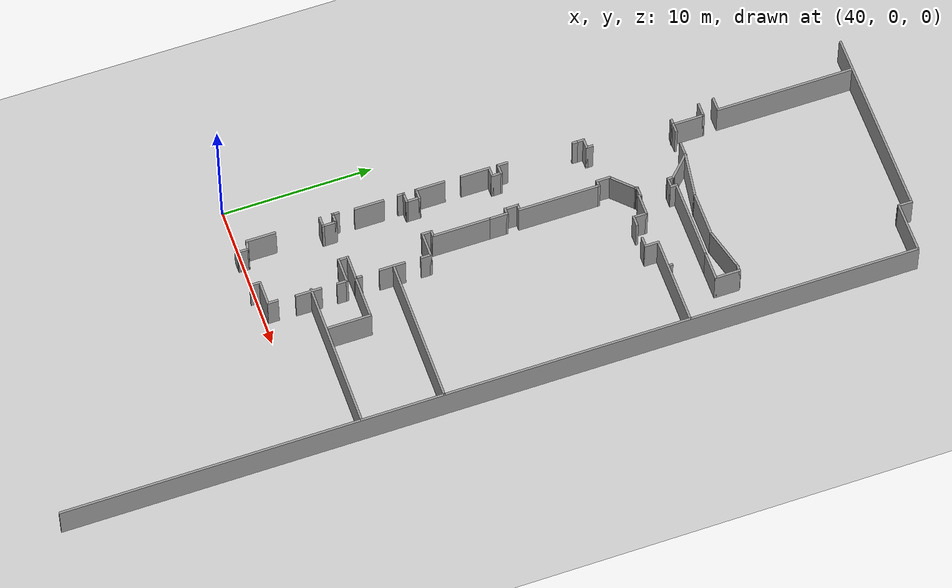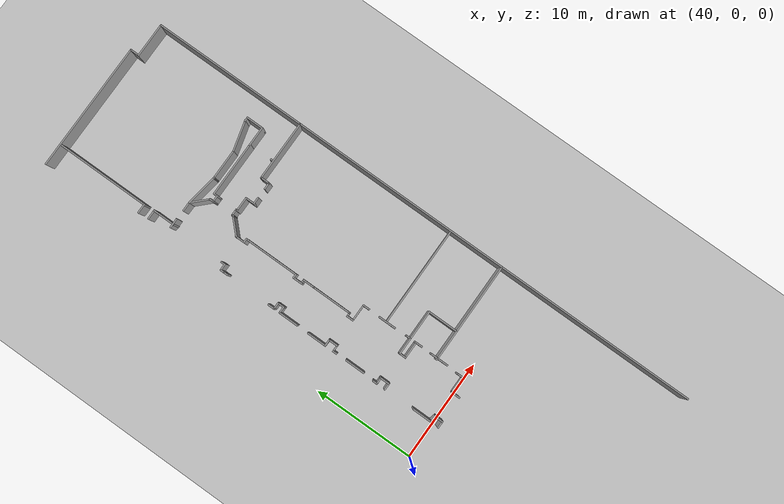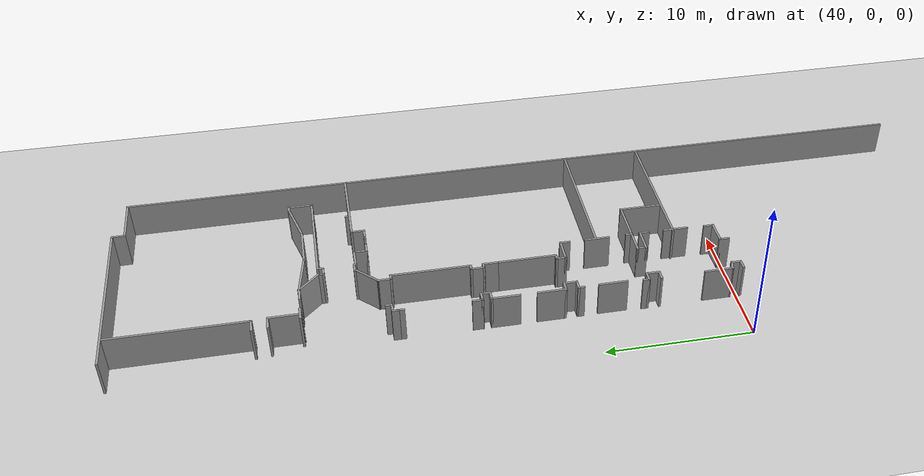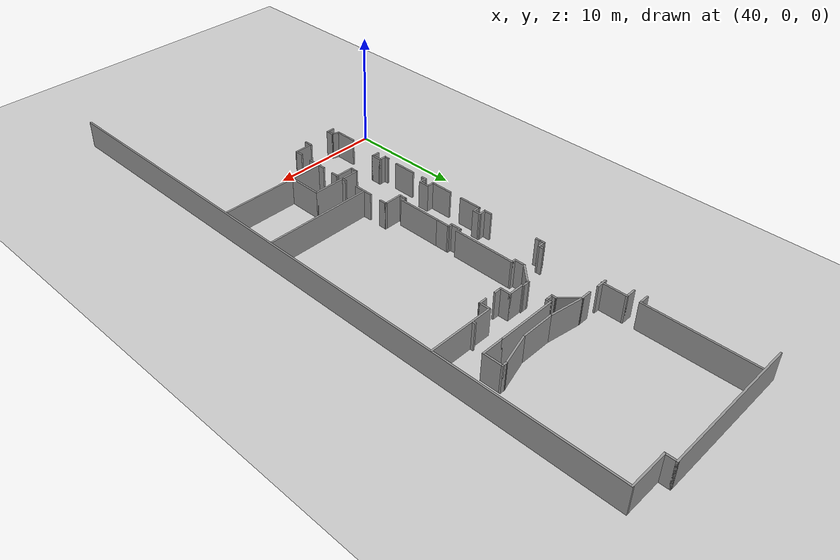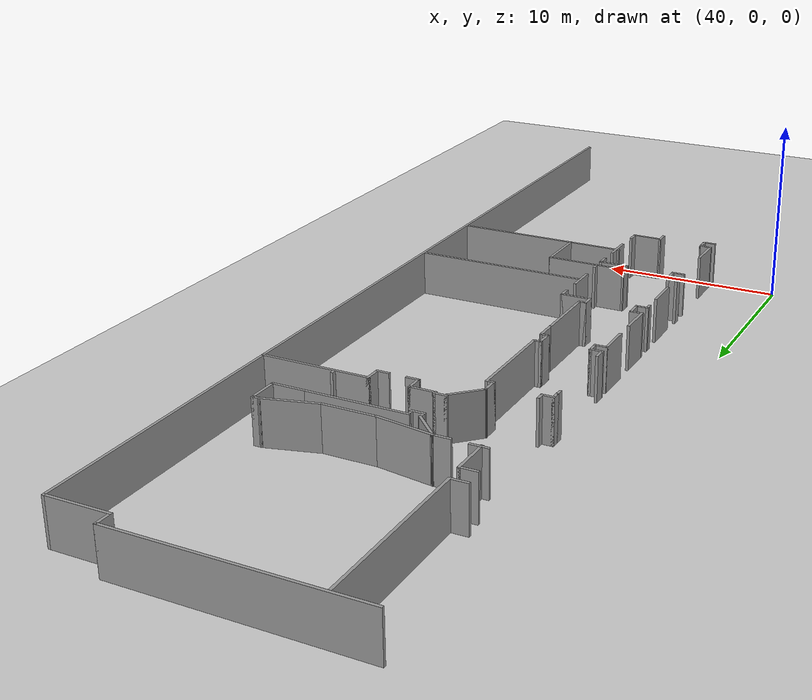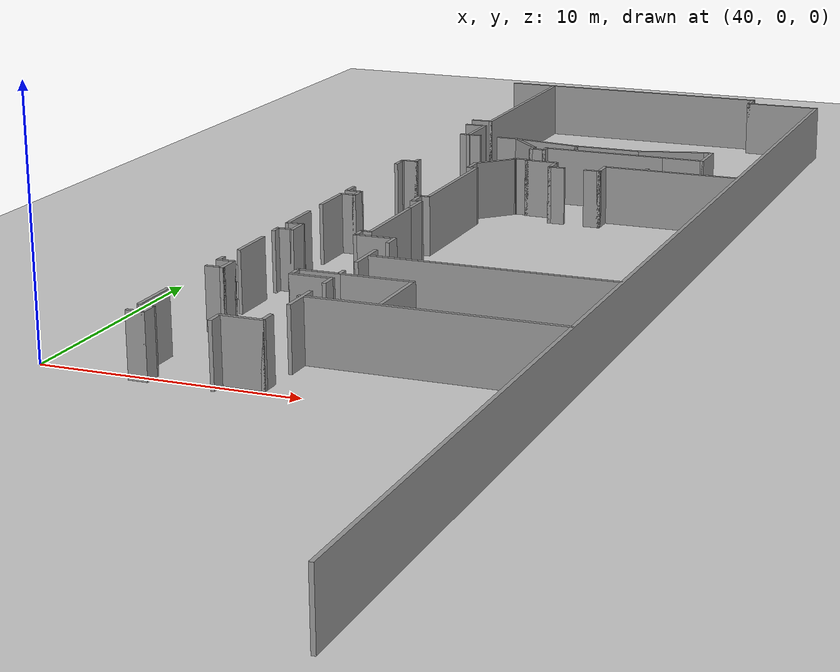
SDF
<sdf version="1.6">
 <world name="default">
  <model name="ground_plane">
   <static>1</static>
   <link name="link">
    <collision name="collision">
     <geometry><plane><normal>0 0 1</normal><size>200 100</size></plane></geometry>
     <surface><friction><ode><mu>100</mu><mu2>50</mu2></ode></friction></surface>
    </collision>
    <visual name="visual">
     <cast_shadows>0</cast_shadows>
     <geometry><plane><normal>0 0 1</normal><size>200 100</size></plane></geometry>
     <material>
      <script><uri>file://media/materials/scripts/gazebo.material</uri><name>Gazebo/Grey</name></script>
     </material>
    </visual>
   </link>
  </model>
  <model name="LuterFloorPlan">
   <pose>-8.27259 7.62647 0 0 -0 0</pose>
   <link name="Wall_1028">
    <collision name="Wall_1028_Collision">
     <geometry><box><size>12.75 0.15 2.5</size></box></geometry>
     <pose>0 0 1.25 0 -0 0</pose>
    </collision>
    <visual name="Wall_1028_Visual">
     <pose>0 0 1.25 0 -0 0</pose>
     <geometry><box><size>12.75 0.15 2.5</size></box></geometry>
     <material>
      <script><uri>file://media/materials/scripts/gazebo.material</uri><name>Gazebo/Grey</name></script>
      <ambient>1 1 1 1</ambient>
     </material>
    </visual>
    <pose>56.9708 33.5714 0 0 -0 0</pose>
   </link>
   <link name="Wall_1029">
    <collision name="Wall_1029_Collision">
     <geometry><box><size>1 0.15 2.5</size></box></geometry>
     <pose>0 0 1.25 0 -0 0</pose>
    </collision>
    <visual name="Wall_1029_Visual">
     <pose>0 0 1.25 0 -0 0</pose>
     <geometry><box><size>1 0.15 2.5</size></box></geometry>
     <material>
      <script><uri>file://media/materials/scripts/gazebo.material</uri><name>Gazebo/Grey</name></script>
      <ambient>1 1 1 1</ambient>
     </material>
    </visual>
    <pose>63.2708 33.1464 0 0 0 -1.5708</pose>
   </link>
   <link name="Wall_1030">
    <collision name="Wall_1030_Collision">
     <geometry><box><size>3.5 0.15 2.5</size></box></geometry>
     <pose>0 0 1.25 0 -0 0</pose>
    </collision>
    <visual name="Wall_1030_Visual">
     <pose>0 0 1.25 0 -0 0</pose>
     <geometry><box><size>3.5 0.15 2.5</size></box></geometry>
     <material>
      <script><uri>file://media/materials/scripts/gazebo.material</uri><name>Gazebo/Grey</name></script>
      <ambient>1 1 1 1</ambient>
     </material>
    </visual>
    <pose>64.9458 32.7214 0 0 -0 0</pose>
   </link>
   <link name="Wall_1033">
    <collision name="Wall_1033_Collision">
     <geometry><box><size>57 0.15 2.5</size></box></geometry>
     <pose>0 0 1.25 0 -0 0</pose>
    </collision>
    <visual name="Wall_1033_Visual">
     <pose>0 0 1.25 0 -0 0</pose>
     <geometry><box><size>57 0.15 2.5</size></box></geometry>
     <material>
      <script><uri>file://media/materials/scripts/gazebo.material</uri><name>Gazebo/Grey</name></script>
      <ambient>1 1 1 1</ambient>
     </material>
    </visual>
    <pose>66.6208 4.29644 0 0 0 -1.5708</pose>
   </link>
   <link name="Wall_1057">
    <collision name="Wall_1057_Collision">
     <geometry><box><size>0.75 0.15 2.5</size></box></geometry>
     <pose>0 0 1.25 0 -0 0</pose>
    </collision>
    <visual name="Wall_1057_Visual">
     <pose>0 0 1.25 0 -0 0</pose>
     <geometry><box><size>0.75 0.15 2.5</size></box></geometry>
     <material>
      <script><uri>file://media/materials/scripts/gazebo.material</uri><name>Gazebo/Grey</name></script>
      <ambient>1 1 1 1</ambient>
     </material>
    </visual>
    <pose>55.1695 -7.63593 0 0 -0 1.5708</pose>
   </link>
   <link name="Wall_1058">
    <collision name="Wall_1058_Collision">
     <geometry><box><size>1.75 0.15 2.5</size></box></geometry>
     <pose>0 0 1.25 0 -0 0</pose>
    </collision>
    <visual name="Wall_1058_Visual">
     <pose>0 0 1.25 0 -0 0</pose>
     <geometry><box><size>1.75 0.15 2.5</size></box></geometry>
     <material>
      <script><uri>file://media/materials/scripts/gazebo.material</uri><name>Gazebo/Grey</name></script>
      <ambient>1 1 1 1</ambient>
     </material>
    </visual>
    <pose>55.9695 -7.33593 0 0 -0 0</pose>
   </link>
   <link name="Wall_1059">
    <collision name="Wall_1059_Collision">
     <geometry><box><size>0.75 0.15 2.5</size></box></geometry>
     <pose>0 0 1.25 0 -0 0</pose>
    </collision>
    <visual name="Wall_1059_Visual">
     <pose>0 0 1.25 0 -0 0</pose>
     <geometry><box><size>0.75 0.15 2.5</size></box></geometry>
     <material>
      <script><uri>file://media/materials/scripts/gazebo.material</uri><name>Gazebo/Grey</name></script>
      <ambient>1 1 1 1</ambient>
     </material>
    </visual>
    <pose>56.7695 -7.03593 0 0 -0 1.5708</pose>
   </link>
   <link name="Wall_1062">
    <collision name="Wall_1062_Collision">
     <geometry><box><size>0.75 0.15 2.5</size></box></geometry>
     <pose>0 0 1.25 0 -0 0</pose>
    </collision>
    <visual name="Wall_1062_Visual">
     <pose>0 0 1.25 0 -0 0</pose>
     <geometry><box><size>0.75 0.15 2.5</size></box></geometry>
     <material>
      <script><uri>file://media/materials/scripts/gazebo.material</uri><name>Gazebo/Grey</name></script>
      <ambient>1 1 1 1</ambient>
     </material>
    </visual>
    <pose>52.3275 -7.92584 0 0 -0 0</pose>
   </link>
   <link name="Wall_1063">
    <collision name="Wall_1063_Collision">
     <geometry><box><size>0.75 0.15 2.5</size></box></geometry>
     <pose>0 0 1.25 0 -0 0</pose>
    </collision>
    <visual name="Wall_1063_Visual">
     <pose>0 0 1.25 0 -0 0</pose>
     <geometry><box><size>0.75 0.15 2.5</size></box></geometry>
     <material>
      <script><uri>file://media/materials/scripts/gazebo.material</uri><name>Gazebo/Grey</name></script>
      <ambient>1 1 1 1</ambient>
     </material>
    </visual>
    <pose>52.6275 -7.62584 0 0 -0 1.5708</pose>
   </link>
   <link name="Wall_1064">
    <collision name="Wall_1064_Collision">
     <geometry><box><size>0.75 0.15 2.5</size></box></geometry>
     <pose>0 0 1.25 0 -0 0</pose>
    </collision>
    <visual name="Wall_1064_Visual">
     <pose>0 0 1.25 0 -0 0</pose>
     <geometry><box><size>0.75 0.15 2.5</size></box></geometry>
     <material>
      <script><uri>file://media/materials/scripts/gazebo.material</uri><name>Gazebo/Grey</name></script>
      <ambient>1 1 1 1</ambient>
     </material>
    </visual>
    <pose>52.3377 -7.24819 0 0 -0 2.87979</pose>
   </link>
   <link name="Wall_1065">
    <collision name="Wall_1065_Collision">
     <geometry><box><size>2 0.15 2.5</size></box></geometry>
     <pose>0 0 1.25 0 -0 0</pose>
    </collision>
    <visual name="Wall_1065_Visual">
     <pose>0 0 1.25 0 -0 0</pose>
     <geometry><box><size>2 0.15 2.5</size></box></geometry>
     <material>
      <script><uri>file://media/materials/scripts/gazebo.material</uri><name>Gazebo/Grey</name></script>
      <ambient>1 1 1 1</ambient>
     </material>
    </visual>
    <pose>52.048 -6.24555 0 0 -0 1.5708</pose>
   </link>
   <link name="Wall_1069">
    <collision name="Wall_1069_Collision">
     <geometry><box><size>1.75 0.15 2.5</size></box></geometry>
     <pose>0 0 1.25 0 -0 0</pose>
    </collision>
    <visual name="Wall_1069_Visual">
     <pose>0 0 1.25 0 -0 0</pose>
     <geometry><box><size>1.75 0.15 2.5</size></box></geometry>
     <material>
      <script><uri>file://media/materials/scripts/gazebo.material</uri><name>Gazebo/Grey</name></script>
      <ambient>1 1 1 1</ambient>
     </material>
    </visual>
    <pose>56.8427 -4.66696 0 0 -0 1.5708</pose>
   </link>
   <link name="Wall_1071">
    <collision name="Wall_1071_Collision">
     <geometry><box><size>10 0.15 2.5</size></box></geometry>
     <pose>0 0 1.25 0 -0 0</pose>
    </collision>
    <visual name="Wall_1071_Visual">
     <pose>0 0 1.25 0 -0 0</pose>
     <geometry><box><size>10 0.15 2.5</size></box></geometry>
     <material>
      <script><uri>file://media/materials/scripts/gazebo.material</uri><name>Gazebo/Grey</name></script>
      <ambient>1 1 1 1</ambient>
     </material>
    </visual>
    <pose>61.6552 -4.45041 0 0 -0 3.14159</pose>
   </link>
   <link name="Wall_1074">
    <collision name="Wall_1074_Collision">
     <geometry><box><size>0.75 0.15 2.5</size></box></geometry>
     <pose>0 0 1.25 0 -0 0</pose>
    </collision>
    <visual name="Wall_1074_Visual">
     <pose>0 0 1.25 0 -0 0</pose>
     <geometry><box><size>0.75 0.15 2.5</size></box></geometry>
     <material>
      <script><uri>file://media/materials/scripts/gazebo.material</uri><name>Gazebo/Grey</name></script>
      <ambient>1 1 1 1</ambient>
     </material>
    </visual>
    <pose>56.8683 -2.42902 0 0 -0 1.5708</pose>
   </link>
   <link name="Wall_1075">
    <collision name="Wall_1075_Collision">
     <geometry><box><size>1.75 0.15 2.5</size></box></geometry>
     <pose>0 0 1.25 0 -0 0</pose>
    </collision>
    <visual name="Wall_1075_Visual">
     <pose>0 0 1.25 0 -0 0</pose>
     <geometry><box><size>1.75 0.15 2.5</size></box></geometry>
     <material>
      <script><uri>file://media/materials/scripts/gazebo.material</uri><name>Gazebo/Grey</name></script>
      <ambient>1 1 1 1</ambient>
     </material>
    </visual>
    <pose>56.0683 -2.12902 0 0 -0 3.14159</pose>
   </link>
   <link name="Wall_1076">
    <collision name="Wall_1076_Collision">
     <geometry><box><size>0.75 0.15 2.5</size></box></geometry>
     <pose>0 0 1.25 0 -0 0</pose>
    </collision>
    <visual name="Wall_1076_Visual">
     <pose>0 0 1.25 0 -0 0</pose>
     <geometry><box><size>0.75 0.15 2.5</size></box></geometry>
     <material>
      <script><uri>file://media/materials/scripts/gazebo.material</uri><name>Gazebo/Grey</name></script>
      <ambient>1 1 1 1</ambient>
     </material>
    </visual>
    <pose>55.2683 -1.82902 0 0 -0 1.5708</pose>
   </link>
   <link name="Wall_1077">
    <collision name="Wall_1077_Collision">
     <geometry><box><size>1.75 0.15 2.5</size></box></geometry>
     <pose>0 0 1.25 0 -0 0</pose>
    </collision>
    <visual name="Wall_1077_Visual">
     <pose>0 0 1.25 0 -0 0</pose>
     <geometry><box><size>1.75 0.15 2.5</size></box></geometry>
     <material>
      <script><uri>file://media/materials/scripts/gazebo.material</uri><name>Gazebo/Grey</name></script>
      <ambient>1 1 1 1</ambient>
     </material>
    </visual>
    <pose>56.0683 -1.52902 0 0 -0 0</pose>
   </link>
   <link name="Wall_1078">
    <collision name="Wall_1078_Collision">
     <geometry><box><size>0.5 0.15 2.5</size></box></geometry>
     <pose>0 0 1.25 0 -0 0</pose>
    </collision>
    <visual name="Wall_1078_Visual">
     <pose>0 0 1.25 0 -0 0</pose>
     <geometry><box><size>0.5 0.15 2.5</size></box></geometry>
     <material>
      <script><uri>file://media/materials/scripts/gazebo.material</uri><name>Gazebo/Grey</name></script>
      <ambient>1 1 1 1</ambient>
     </material>
    </visual>
    <pose>56.8683 -1.35402 0 0 -0 1.5708</pose>
   </link>
   <link name="Wall_1080">
    <collision name="Wall_1080_Collision">
     <geometry><box><size>3 0.15 2.5</size></box></geometry>
     <pose>0 0 1.25 0 -0 0</pose>
    </collision>
    <visual name="Wall_1080_Visual">
     <pose>0 0 1.25 0 -0 0</pose>
     <geometry><box><size>3 0.15 2.5</size></box></geometry>
     <material>
      <script><uri>file://media/materials/scripts/gazebo.material</uri><name>Gazebo/Grey</name></script>
      <ambient>1 1 1 1</ambient>
     </material>
    </visual>
    <pose>58.2933 -1.52902 0 0 -0 0</pose>
   </link>
   <link name="Wall_1081">
    <collision name="Wall_1081_Collision">
     <geometry><box><size>3 0.15 2.5</size></box></geometry>
     <pose>0 0 1.25 0 -0 0</pose>
    </collision>
    <visual name="Wall_1081_Visual">
     <pose>0 0 1.25 0 -0 0</pose>
     <geometry><box><size>3 0.15 2.5</size></box></geometry>
     <material>
      <script><uri>file://media/materials/scripts/gazebo.material</uri><name>Gazebo/Grey</name></script>
      <ambient>1 1 1 1</ambient>
     </material>
    </visual>
    <pose>59.7183 -2.95402 0 0 0 -1.5708</pose>
   </link>
   <link name="Wall_1084">
    <collision name="Wall_1084_Collision">
     <geometry><box><size>0.75 0.15 2.5</size></box></geometry>
     <pose>0 0 1.25 0 -0 0</pose>
    </collision>
    <visual name="Wall_1084_Visual">
     <pose>0 0 1.25 0 -0 0</pose>
     <geometry><box><size>0.75 0.15 2.5</size></box></geometry>
     <material>
      <script><uri>file://media/materials/scripts/gazebo.material</uri><name>Gazebo/Grey</name></script>
      <ambient>1 1 1 1</ambient>
     </material>
    </visual>
    <pose>52.2891 -2.27087 0 0 -0 0</pose>
   </link>
   <link name="Wall_1085">
    <collision name="Wall_1085_Collision">
     <geometry><box><size>1 0.15 2.5</size></box></geometry>
     <pose>0 0 1.25 0 -0 0</pose>
    </collision>
    <visual name="Wall_1085_Visual">
     <pose>0 0 1.25 0 -0 0</pose>
     <geometry><box><size>1 0.15 2.5</size></box></geometry>
     <material>
      <script><uri>file://media/materials/scripts/gazebo.material</uri><name>Gazebo/Grey</name></script>
      <ambient>1 1 1 1</ambient>
     </material>
    </visual>
    <pose>52.5891 -1.84587 0 0 -0 1.5708</pose>
   </link>
   <link name="Wall_1087">
    <collision name="Wall_1087_Collision">
     <geometry><box><size>0.75 0.15 2.5</size></box></geometry>
     <pose>0 0 1.25 0 -0 0</pose>
    </collision>
    <visual name="Wall_1087_Visual">
     <pose>0 0 1.25 0 -0 0</pose>
     <geometry><box><size>0.75 0.15 2.5</size></box></geometry>
     <material>
      <script><uri>file://media/materials/scripts/gazebo.material</uri><name>Gazebo/Grey</name></script>
      <ambient>1 1 1 1</ambient>
     </material>
    </visual>
    <pose>52.2891 -1.42087 0 0 -0 3.14159</pose>
   </link>
   <link name="Wall_1088">
    <collision name="Wall_1088_Collision">
     <geometry><box><size>0.5 0.15 2.5</size></box></geometry>
     <pose>0 0 1.25 0 -0 0</pose>
    </collision>
    <visual name="Wall_1088_Visual">
     <pose>0 0 1.25 0 -0 0</pose>
     <geometry><box><size>0.5 0.15 2.5</size></box></geometry>
     <material>
      <script><uri>file://media/materials/scripts/gazebo.material</uri><name>Gazebo/Grey</name></script>
      <ambient>1 1 1 1</ambient>
     </material>
    </visual>
    <pose>51.9891 -1.24587 0 0 -0 1.5708</pose>
   </link>
   <link name="Wall_1092">
    <collision name="Wall_1092_Collision">
     <geometry><box><size>1.75 0.15 2.5</size></box></geometry>
     <pose>0 0 1.25 0 -0 0</pose>
    </collision>
    <visual name="Wall_1092_Visual">
     <pose>0 0 1.25 0 -0 0</pose>
     <geometry><box><size>1.75 0.15 2.5</size></box></geometry>
     <material>
      <script><uri>file://media/materials/scripts/gazebo.material</uri><name>Gazebo/Grey</name></script>
      <ambient>1 1 1 1</ambient>
     </material>
    </visual>
    <pose>56.8224 0.915874 0 0 -0 1.5708</pose>
   </link>
   <link name="Wall_1094">
    <collision name="Wall_1094_Collision">
     <geometry><box><size>2 0.15 2.5</size></box></geometry>
     <pose>0 0 1.25 0 -0 0</pose>
    </collision>
    <visual name="Wall_1094_Visual">
     <pose>0 0 1.25 0 -0 0</pose>
     <geometry><box><size>2 0.15 2.5</size></box></geometry>
     <material>
      <script><uri>file://media/materials/scripts/gazebo.material</uri><name>Gazebo/Grey</name></script>
      <ambient>1 1 1 1</ambient>
     </material>
    </visual>
    <pose>52.0809 0.979693 0 0 -0 1.5708</pose>
   </link>
   <link name="Wall_1096">
    <collision name="Wall_1096_Collision">
     <geometry><box><size>0.5 0.15 2.5</size></box></geometry>
     <pose>0 0 1.25 0 -0 0</pose>
    </collision>
    <visual name="Wall_1096_Visual">
     <pose>0 0 1.25 0 -0 0</pose>
     <geometry><box><size>0.5 0.15 2.5</size></box></geometry>
     <material>
      <script><uri>file://media/materials/scripts/gazebo.material</uri><name>Gazebo/Grey</name></script>
      <ambient>1 1 1 1</ambient>
     </material>
    </visual>
    <pose>52.0503 3.13577 0 0 -0 1.5708</pose>
   </link>
   <link name="Wall_1097">
    <collision name="Wall_1097_Collision">
     <geometry><box><size>0.75 0.15 2.5</size></box></geometry>
     <pose>0 0 1.25 0 -0 0</pose>
    </collision>
    <visual name="Wall_1097_Visual">
     <pose>0 0 1.25 0 -0 0</pose>
     <geometry><box><size>0.75 0.15 2.5</size></box></geometry>
     <material>
      <script><uri>file://media/materials/scripts/gazebo.material</uri><name>Gazebo/Grey</name></script>
      <ambient>1 1 1 1</ambient>
     </material>
    </visual>
    <pose>52.3503 3.31076 0 0 -0 0</pose>
   </link>
   <link name="Wall_1098">
    <collision name="Wall_1098_Collision">
     <geometry><box><size>1 0.15 2.5</size></box></geometry>
     <pose>0 0 1.25 0 -0 0</pose>
    </collision>
    <visual name="Wall_1098_Visual">
     <pose>0 0 1.25 0 -0 0</pose>
     <geometry><box><size>1 0.15 2.5</size></box></geometry>
     <material>
      <script><uri>file://media/materials/scripts/gazebo.material</uri><name>Gazebo/Grey</name></script>
      <ambient>1 1 1 1</ambient>
     </material>
    </visual>
    <pose>52.6503 3.73576 0 0 -0 1.5708</pose>
   </link>
   <link name="Wall_1099">
    <collision name="Wall_1099_Collision">
     <geometry><box><size>0.75 0.15 2.5</size></box></geometry>
     <pose>0 0 1.25 0 -0 0</pose>
    </collision>
    <visual name="Wall_1099_Visual">
     <pose>0 0 1.25 0 -0 0</pose>
     <geometry><box><size>0.75 0.15 2.5</size></box></geometry>
     <material>
      <script><uri>file://media/materials/scripts/gazebo.material</uri><name>Gazebo/Grey</name></script>
      <ambient>1 1 1 1</ambient>
     </material>
    </visual>
    <pose>52.3503 4.16077 0 0 -0 3.14159</pose>
   </link>
   <link name="Wall_1100">
    <collision name="Wall_1100_Collision">
     <geometry><box><size>2 0.15 2.5</size></box></geometry>
     <pose>0 0 1.25 0 -0 0</pose>
    </collision>
    <visual name="Wall_1100_Visual">
     <pose>0 0 1.25 0 -0 0</pose>
     <geometry><box><size>2 0.15 2.5</size></box></geometry>
     <material>
      <script><uri>file://media/materials/scripts/gazebo.material</uri><name>Gazebo/Grey</name></script>
      <ambient>1 1 1 1</ambient>
     </material>
    </visual>
    <pose>52.0503 5.08577 0 0 -0 1.5708</pose>
   </link>
   <link name="Wall_1102">
    <collision name="Wall_1102_Collision">
     <geometry><box><size>0.75 0.15 2.5</size></box></geometry>
     <pose>0 0 1.25 0 -0 0</pose>
    </collision>
    <visual name="Wall_1102_Visual">
     <pose>0 0 1.25 0 -0 0</pose>
     <geometry><box><size>0.75 0.15 2.5</size></box></geometry>
     <material>
      <script><uri>file://media/materials/scripts/gazebo.material</uri><name>Gazebo/Grey</name></script>
      <ambient>1 1 1 1</ambient>
     </material>
    </visual>
    <pose>56.8377 3.18429 0 0 -0 1.5708</pose>
   </link>
   <link name="Wall_1103">
    <collision name="Wall_1103_Collision">
     <geometry><box><size>1.75 0.15 2.5</size></box></geometry>
     <pose>0 0 1.25 0 -0 0</pose>
    </collision>
    <visual name="Wall_1103_Visual">
     <pose>0 0 1.25 0 -0 0</pose>
     <geometry><box><size>1.75 0.15 2.5</size></box></geometry>
     <material>
      <script><uri>file://media/materials/scripts/gazebo.material</uri><name>Gazebo/Grey</name></script>
      <ambient>1 1 1 1</ambient>
     </material>
    </visual>
    <pose>56.0377 3.48429 0 0 -0 3.14159</pose>
   </link>
   <link name="Wall_1104">
    <collision name="Wall_1104_Collision">
     <geometry><box><size>0.75 0.15 2.5</size></box></geometry>
     <pose>0 0 1.25 0 -0 0</pose>
    </collision>
    <visual name="Wall_1104_Visual">
     <pose>0 0 1.25 0 -0 0</pose>
     <geometry><box><size>0.75 0.15 2.5</size></box></geometry>
     <material>
      <script><uri>file://media/materials/scripts/gazebo.material</uri><name>Gazebo/Grey</name></script>
      <ambient>1 1 1 1</ambient>
     </material>
    </visual>
    <pose>55.2377 3.78429 0 0 -0 1.5708</pose>
   </link>
   <link name="Wall_1105">
    <collision name="Wall_1105_Collision">
     <geometry><box><size>0.5 0.15 2.5</size></box></geometry>
     <pose>0 0 1.25 0 -0 0</pose>
    </collision>
    <visual name="Wall_1105_Visual">
     <pose>0 0 1.25 0 -0 0</pose>
     <geometry><box><size>0.5 0.15 2.5</size></box></geometry>
     <material>
      <script><uri>file://media/materials/scripts/gazebo.material</uri><name>Gazebo/Grey</name></script>
      <ambient>1 1 1 1</ambient>
     </material>
    </visual>
    <pose>55.4127 4.08429 0 0 -0 0</pose>
   </link>
   <link name="Wall_1106">
    <collision name="Wall_1106_Collision">
     <geometry><box><size>4 0.15 2.5</size></box></geometry>
     <pose>0 0 1.25 0 -0 0</pose>
    </collision>
    <visual name="Wall_1106_Visual">
     <pose>0 0 1.25 0 -0 0</pose>
     <geometry><box><size>4 0.15 2.5</size></box></geometry>
     <material>
      <script><uri>file://media/materials/scripts/gazebo.material</uri><name>Gazebo/Grey</name></script>
      <ambient>1 1 1 1</ambient>
     </material>
    </visual>
    <pose>55.5877 6.00929 0 0 -0 1.5708</pose>
   </link>
   <link name="Wall_1111">
    <collision name="Wall_1111_Collision">
     <geometry><box><size>9.75 0.15 2.5</size></box></geometry>
     <pose>0 0 1.25 0 -0 0</pose>
    </collision>
    <visual name="Wall_1111_Visual">
     <pose>0 0 1.25 0 -0 0</pose>
     <geometry><box><size>9.75 0.15 2.5</size></box></geometry>
     <material>
      <script><uri>file://media/materials/scripts/gazebo.material</uri><name>Gazebo/Grey</name></script>
      <ambient>1 1 1 1</ambient>
     </material>
    </visual>
    <pose>61.7496 1.00996 0 0 -0 0</pose>
   </link>
   <link name="Wall_1113">
    <collision name="Wall_1113_Collision">
     <geometry><box><size>1.25 0.15 2.5</size></box></geometry>
     <pose>0 0 1.25 0 -0 0</pose>
    </collision>
    <visual name="Wall_1113_Visual">
     <pose>0 0 1.25 0 -0 0</pose>
     <geometry><box><size>1.25 0.15 2.5</size></box></geometry>
     <material>
      <script><uri>file://media/materials/scripts/gazebo.material</uri><name>Gazebo/Grey</name></script>
      <ambient>1 1 1 1</ambient>
     </material>
    </visual>
    <pose>55.5877 8.48429 0 0 -0 1.5708</pose>
   </link>
   <link name="Wall_1114">
    <collision name="Wall_1114_Collision">
     <geometry><box><size>0.5 0.15 2.5</size></box></geometry>
     <pose>0 0 1.25 0 -0 0</pose>
    </collision>
    <visual name="Wall_1114_Visual">
     <pose>0 0 1.25 0 -0 0</pose>
     <geometry><box><size>0.5 0.15 2.5</size></box></geometry>
     <material>
      <script><uri>file://media/materials/scripts/gazebo.material</uri><name>Gazebo/Grey</name></script>
      <ambient>1 1 1 1</ambient>
     </material>
    </visual>
    <pose>55.4127 9.03429 0 0 -0 3.14159</pose>
   </link>
   <link name="Wall_1115">
    <collision name="Wall_1115_Collision">
     <geometry><box><size>1 0.15 2.5</size></box></geometry>
     <pose>0 0 1.25 0 -0 0</pose>
    </collision>
    <visual name="Wall_1115_Visual">
     <pose>0 0 1.25 0 -0 0</pose>
     <geometry><box><size>1 0.15 2.5</size></box></geometry>
     <material>
      <script><uri>file://media/materials/scripts/gazebo.material</uri><name>Gazebo/Grey</name></script>
      <ambient>1 1 1 1</ambient>
     </material>
    </visual>
    <pose>55.2377 9.45929 0 0 -0 1.5708</pose>
   </link>
   <link name="Wall_1116">
    <collision name="Wall_1116_Collision">
     <geometry><box><size>0.5 0.15 2.5</size></box></geometry>
     <pose>0 0 1.25 0 -0 0</pose>
    </collision>
    <visual name="Wall_1116_Visual">
     <pose>0 0 1.25 0 -0 0</pose>
     <geometry><box><size>0.5 0.15 2.5</size></box></geometry>
     <material>
      <script><uri>file://media/materials/scripts/gazebo.material</uri><name>Gazebo/Grey</name></script>
      <ambient>1 1 1 1</ambient>
     </material>
    </visual>
    <pose>55.4127 9.88429 0 0 -0 0</pose>
   </link>
   <link name="Wall_1117">
    <collision name="Wall_1117_Collision">
     <geometry><box><size>5.5 0.15 2.5</size></box></geometry>
     <pose>0 0 1.25 0 -0 0</pose>
    </collision>
    <visual name="Wall_1117_Visual">
     <pose>0 0 1.25 0 -0 0</pose>
     <geometry><box><size>5.5 0.15 2.5</size></box></geometry>
     <material>
      <script><uri>file://media/materials/scripts/gazebo.material</uri><name>Gazebo/Grey</name></script>
      <ambient>1 1 1 1</ambient>
     </material>
    </visual>
    <pose>55.5877 12.5593 0 0 -0 1.5708</pose>
   </link>
   <link name="Wall_1119">
    <collision name="Wall_1119_Collision">
     <geometry><box><size>2 0.15 2.5</size></box></geometry>
     <pose>0 0 1.25 0 -0 0</pose>
    </collision>
    <visual name="Wall_1119_Visual">
     <pose>0 0 1.25 0 -0 0</pose>
     <geometry><box><size>2 0.15 2.5</size></box></geometry>
     <material>
      <script><uri>file://media/materials/scripts/gazebo.material</uri><name>Gazebo/Grey</name></script>
      <ambient>1 1 1 1</ambient>
     </material>
    </visual>
    <pose>52.0523 8.14604 0 0 -0 1.5708</pose>
   </link>
   <link name="Wall_1120">
    <collision name="Wall_1120_Collision">
     <geometry><box><size>0.75 0.15 2.5</size></box></geometry>
     <pose>0 0 1.25 0 -0 0</pose>
    </collision>
    <visual name="Wall_1120_Visual">
     <pose>0 0 1.25 0 -0 0</pose>
     <geometry><box><size>0.75 0.15 2.5</size></box></geometry>
     <material>
      <script><uri>file://media/materials/scripts/gazebo.material</uri><name>Gazebo/Grey</name></script>
      <ambient>1 1 1 1</ambient>
     </material>
    </visual>
    <pose>52.3523 9.07104 0 0 -0 0</pose>
   </link>
   <link name="Wall_1121">
    <collision name="Wall_1121_Collision">
     <geometry><box><size>0.75 0.15 2.5</size></box></geometry>
     <pose>0 0 1.25 0 -0 0</pose>
    </collision>
    <visual name="Wall_1121_Visual">
     <pose>0 0 1.25 0 -0 0</pose>
     <geometry><box><size>0.75 0.15 2.5</size></box></geometry>
     <material>
      <script><uri>file://media/materials/scripts/gazebo.material</uri><name>Gazebo/Grey</name></script>
      <ambient>1 1 1 1</ambient>
     </material>
    </visual>
    <pose>52.6523 9.37104 0 0 -0 1.5708</pose>
   </link>
   <link name="Wall_1122">
    <collision name="Wall_1122_Collision">
     <geometry><box><size>0.75 0.15 2.5</size></box></geometry>
     <pose>0 0 1.25 0 -0 0</pose>
    </collision>
    <visual name="Wall_1122_Visual">
     <pose>0 0 1.25 0 -0 0</pose>
     <geometry><box><size>0.75 0.15 2.5</size></box></geometry>
     <material>
      <script><uri>file://media/materials/scripts/gazebo.material</uri><name>Gazebo/Grey</name></script>
      <ambient>1 1 1 1</ambient>
     </material>
    </visual>
    <pose>52.3523 9.67104 0 0 -0 3.14159</pose>
   </link>
   <link name="Wall_1123">
    <collision name="Wall_1123_Collision">
     <geometry><box><size>0.75 0.15 2.5</size></box></geometry>
     <pose>0 0 1.25 0 -0 0</pose>
    </collision>
    <visual name="Wall_1123_Visual">
     <pose>0 0 1.25 0 -0 0</pose>
     <geometry><box><size>0.75 0.15 2.5</size></box></geometry>
     <material>
      <script><uri>file://media/materials/scripts/gazebo.material</uri><name>Gazebo/Grey</name></script>
      <ambient>1 1 1 1</ambient>
     </material>
    </visual>
    <pose>52.0523 9.97104 0 0 -0 1.5708</pose>
   </link>
   <link name="Wall_1133">
    <collision name="Wall_1133_Collision">
     <geometry><box><size>0.5 0.15 2.5</size></box></geometry>
     <pose>0 0 1.25 0 -0 0</pose>
    </collision>
    <visual name="Wall_1133_Visual">
     <pose>0 0 1.25 0 -0 0</pose>
     <geometry><box><size>0.5 0.15 2.5</size></box></geometry>
     <material>
      <script><uri>file://media/materials/scripts/gazebo.material</uri><name>Gazebo/Grey</name></script>
      <ambient>1 1 1 1</ambient>
     </material>
    </visual>
    <pose>52.0738 14.9383 0 0 0 -1.5708</pose>
   </link>
   <link name="Wall_1135">
    <collision name="Wall_1135_Collision">
     <geometry><box><size>0.5 0.15 2.5</size></box></geometry>
     <pose>0 0 1.25 0 -0 0</pose>
    </collision>
    <visual name="Wall_1135_Visual">
     <pose>0 0 1.25 0 -0 0</pose>
     <geometry><box><size>0.5 0.15 2.5</size></box></geometry>
     <material>
      <script><uri>file://media/materials/scripts/gazebo.material</uri><name>Gazebo/Grey</name></script>
      <ambient>1 1 1 1</ambient>
     </material>
    </visual>
    <pose>52.0738 15.2883 0 0 -0 1.5708</pose>
   </link>
   <link name="Wall_1136">
    <collision name="Wall_1136_Collision">
     <geometry><box><size>0.75 0.15 2.5</size></box></geometry>
     <pose>0 0 1.25 0 -0 0</pose>
    </collision>
    <visual name="Wall_1136_Visual">
     <pose>0 0 1.25 0 -0 0</pose>
     <geometry><box><size>0.75 0.15 2.5</size></box></geometry>
     <material>
      <script><uri>file://media/materials/scripts/gazebo.material</uri><name>Gazebo/Grey</name></script>
      <ambient>1 1 1 1</ambient>
     </material>
    </visual>
    <pose>52.3738 15.4633 0 0 -0 0</pose>
   </link>
   <link name="Wall_1137">
    <collision name="Wall_1137_Collision">
     <geometry><box><size>0.5 0.15 2.5</size></box></geometry>
     <pose>0 0 1.25 0 -0 0</pose>
    </collision>
    <visual name="Wall_1137_Visual">
     <pose>0 0 1.25 0 -0 0</pose>
     <geometry><box><size>0.5 0.15 2.5</size></box></geometry>
     <material>
      <script><uri>file://media/materials/scripts/gazebo.material</uri><name>Gazebo/Grey</name></script>
      <ambient>1 1 1 1</ambient>
     </material>
    </visual>
    <pose>52.6738 15.6383 0 0 -0 1.5708</pose>
   </link>
   <link name="Wall_1150">
    <collision name="Wall_1150_Collision">
     <geometry><box><size>0.5 0.15 2.5</size></box></geometry>
     <pose>0 0 1.25 0 -0 0</pose>
    </collision>
    <visual name="Wall_1150_Visual">
     <pose>0 0 1.25 0 -0 0</pose>
     <geometry><box><size>0.5 0.15 2.5</size></box></geometry>
     <material>
      <script><uri>file://media/materials/scripts/gazebo.material</uri><name>Gazebo/Grey</name></script>
      <ambient>1 1 1 1</ambient>
     </material>
    </visual>
    <pose>55.4127 15.2343 0 0 -0 3.14159</pose>
   </link>
   <link name="Wall_1151">
    <collision name="Wall_1151_Collision">
     <geometry><box><size>1 0.15 2.5</size></box></geometry>
     <pose>0 0 1.25 0 -0 0</pose>
    </collision>
    <visual name="Wall_1151_Visual">
     <pose>0 0 1.25 0 -0 0</pose>
     <geometry><box><size>1 0.15 2.5</size></box></geometry>
     <material>
      <script><uri>file://media/materials/scripts/gazebo.material</uri><name>Gazebo/Grey</name></script>
      <ambient>1 1 1 1</ambient>
     </material>
    </visual>
    <pose>55.2377 15.6593 0 0 -0 1.5708</pose>
   </link>
   <link name="Wall_1152">
    <collision name="Wall_1152_Collision">
     <geometry><box><size>2 0.15 2.5</size></box></geometry>
     <pose>0 0 1.25 0 -0 0</pose>
    </collision>
    <visual name="Wall_1152_Visual">
     <pose>0 0 1.25 0 -0 0</pose>
     <geometry><box><size>2 0.15 2.5</size></box></geometry>
     <material>
      <script><uri>file://media/materials/scripts/gazebo.material</uri><name>Gazebo/Grey</name></script>
      <ambient>1 1 1 1</ambient>
     </material>
    </visual>
    <pose>55.8917 16.7384 0 0 -0 0.785398</pose>
   </link>
   <link name="Wall_1153">
    <collision name="Wall_1153_Collision">
     <geometry><box><size>0.25 0.15 2.5</size></box></geometry>
     <pose>0 0 1.25 0 -0 0</pose>
    </collision>
    <visual name="Wall_1153_Visual">
     <pose>0 0 1.25 0 -0 0</pose>
     <geometry><box><size>0.25 0.15 2.5</size></box></geometry>
     <material>
      <script><uri>file://media/materials/scripts/gazebo.material</uri><name>Gazebo/Grey</name></script>
      <ambient>1 1 1 1</ambient>
     </material>
    </visual>
    <pose>56.5458 17.4424 0 0 -0 1.5708</pose>
   </link>
   <link name="Wall_1154">
    <collision name="Wall_1154_Collision">
     <geometry><box><size>0.75 0.15 2.5</size></box></geometry>
     <pose>0 0 1.25 0 -0 0</pose>
    </collision>
    <visual name="Wall_1154_Visual">
     <pose>0 0 1.25 0 -0 0</pose>
     <geometry><box><size>0.75 0.15 2.5</size></box></geometry>
     <material>
      <script><uri>file://media/materials/scripts/gazebo.material</uri><name>Gazebo/Grey</name></script>
      <ambient>1 1 1 1</ambient>
     </material>
    </visual>
    <pose>56.8458 17.4924 0 0 -0 0</pose>
   </link>
   <link name="Wall_1155">
    <collision name="Wall_1155_Collision">
     <geometry><box><size>0.25 0.15 2.5</size></box></geometry>
     <pose>0 0 1.25 0 -0 0</pose>
    </collision>
    <visual name="Wall_1155_Visual">
     <pose>0 0 1.25 0 -0 0</pose>
     <geometry><box><size>0.25 0.15 2.5</size></box></geometry>
     <material>
      <script><uri>file://media/materials/scripts/gazebo.material</uri><name>Gazebo/Grey</name></script>
      <ambient>1 1 1 1</ambient>
     </material>
    </visual>
    <pose>57.1458 17.4424 0 0 0 -1.5708</pose>
   </link>
   <link name="Wall_1156">
    <collision name="Wall_1156_Collision">
     <geometry><box><size>1.5 0.15 2.5</size></box></geometry>
     <pose>0 0 1.25 0 -0 0</pose>
    </collision>
    <visual name="Wall_1156_Visual">
     <pose>0 0 1.25 0 -0 0</pose>
     <geometry><box><size>1.5 0.15 2.5</size></box></geometry>
     <material>
      <script><uri>file://media/materials/scripts/gazebo.material</uri><name>Gazebo/Grey</name></script>
      <ambient>1 1 1 1</ambient>
     </material>
    </visual>
    <pose>57.8208 17.3924 0 0 -0 0</pose>
   </link>
   <link name="Wall_1157">
    <collision name="Wall_1157_Collision">
     <geometry><box><size>1 0.15 2.5</size></box></geometry>
     <pose>0 0 1.25 0 -0 0</pose>
    </collision>
    <visual name="Wall_1157_Visual">
     <pose>0 0 1.25 0 -0 0</pose>
     <geometry><box><size>1 0.15 2.5</size></box></geometry>
     <material>
      <script><uri>file://media/materials/scripts/gazebo.material</uri><name>Gazebo/Grey</name></script>
      <ambient>1 1 1 1</ambient>
     </material>
    </visual>
    <pose>58.4958 16.9674 0 0 0 -1.5708</pose>
   </link>
   <link name="Wall_1158">
    <collision name="Wall_1158_Collision">
     <geometry><box><size>0.75 0.15 2.5</size></box></geometry>
     <pose>0 0 1.25 0 -0 0</pose>
    </collision>
    <visual name="Wall_1158_Visual">
     <pose>0 0 1.25 0 -0 0</pose>
     <geometry><box><size>0.75 0.15 2.5</size></box></geometry>
     <material>
      <script><uri>file://media/materials/scripts/gazebo.material</uri><name>Gazebo/Grey</name></script>
      <ambient>1 1 1 1</ambient>
     </material>
    </visual>
    <pose>58.7958 16.5424 0 0 -0 0</pose>
   </link>
   <link name="Wall_1160">
    <collision name="Wall_1160_Collision">
     <geometry><box><size>0.75 0.15 2.5</size></box></geometry>
     <pose>0 0 1.25 0 -0 0</pose>
    </collision>
    <visual name="Wall_1160_Visual">
     <pose>0 0 1.25 0 -0 0</pose>
     <geometry><box><size>0.75 0.15 2.5</size></box></geometry>
     <material>
      <script><uri>file://media/materials/scripts/gazebo.material</uri><name>Gazebo/Grey</name></script>
      <ambient>1 1 1 1</ambient>
     </material>
    </visual>
    <pose>60.4308 16.5279 0 0 -0 0</pose>
   </link>
   <link name="Wall_1161">
    <collision name="Wall_1161_Collision">
     <geometry><box><size>1 0.15 2.5</size></box></geometry>
     <pose>0 0 1.25 0 -0 0</pose>
    </collision>
    <visual name="Wall_1161_Visual">
     <pose>0 0 1.25 0 -0 0</pose>
     <geometry><box><size>1 0.15 2.5</size></box></geometry>
     <material>
      <script><uri>file://media/materials/scripts/gazebo.material</uri><name>Gazebo/Grey</name></script>
      <ambient>1 1 1 1</ambient>
     </material>
    </visual>
    <pose>60.7308 16.9529 0 0 -0 1.5708</pose>
   </link>
   <link name="Wall_1162">
    <collision name="Wall_1162_Collision">
     <geometry><box><size>6 0.15 2.5</size></box></geometry>
     <pose>0 0 1.25 0 -0 0</pose>
    </collision>
    <visual name="Wall_1162_Visual">
     <pose>0 0 1.25 0 -0 0</pose>
     <geometry><box><size>6 0.15 2.5</size></box></geometry>
     <material>
      <script><uri>file://media/materials/scripts/gazebo.material</uri><name>Gazebo/Grey</name></script>
      <ambient>1 1 1 1</ambient>
     </material>
    </visual>
    <pose>63.6558 17.3779 0 0 -0 0</pose>
   </link>
   <link name="Wall_1164">
    <collision name="Wall_1164_Collision">
     <geometry><box><size>0.25 0.15 2.5</size></box></geometry>
     <pose>0 0 1.25 0 -0 0</pose>
    </collision>
    <visual name="Wall_1164_Visual">
     <pose>0 0 1.25 0 -0 0</pose>
     <geometry><box><size>0.25 0.15 2.5</size></box></geometry>
     <material>
      <script><uri>file://media/materials/scripts/gazebo.material</uri><name>Gazebo/Grey</name></script>
      <ambient>1 1 1 1</ambient>
     </material>
    </visual>
    <pose>62.5514 17.5685 0 0 0 -1.5708</pose>
   </link>
   <link name="Wall_1173">
    <collision name="Wall_1173_Collision">
     <geometry><box><size>1 0.15 2.5</size></box></geometry>
     <pose>0 0 1.25 0 -0 0</pose>
    </collision>
    <visual name="Wall_1173_Visual">
     <pose>0 0 1.25 0 -0 0</pose>
     <geometry><box><size>1 0.15 2.5</size></box></geometry>
     <material>
      <script><uri>file://media/materials/scripts/gazebo.material</uri><name>Gazebo/Grey</name></script>
      <ambient>1 1 1 1</ambient>
     </material>
    </visual>
    <pose>52.9808 21.267 0 0 -0 0</pose>
   </link>
   <link name="Wall_1175">
    <collision name="Wall_1175_Collision">
     <geometry><box><size>2.25 0.15 2.5</size></box></geometry>
     <pose>0 0 1.25 0 -0 0</pose>
    </collision>
    <visual name="Wall_1175_Visual">
     <pose>0 0 1.25 0 -0 0</pose>
     <geometry><box><size>2.25 0.15 2.5</size></box></geometry>
     <material>
      <script><uri>file://media/materials/scripts/gazebo.material</uri><name>Gazebo/Grey</name></script>
      <ambient>1 1 1 1</ambient>
     </material>
    </visual>
    <pose>52.8942 22.2628 0 0 -0 1.5708</pose>
   </link>
   <link name="Wall_1176">
    <collision name="Wall_1176_Collision">
     <geometry><box><size>1 0.15 2.5</size></box></geometry>
     <pose>0 0 1.25 0 -0 0</pose>
    </collision>
    <visual name="Wall_1176_Visual">
     <pose>0 0 1.25 0 -0 0</pose>
     <geometry><box><size>1 0.15 2.5</size></box></geometry>
     <material>
      <script><uri>file://media/materials/scripts/gazebo.material</uri><name>Gazebo/Grey</name></script>
      <ambient>1 1 1 1</ambient>
     </material>
    </visual>
    <pose>52.4692 23.3128 0 0 -0 3.14159</pose>
   </link>
   <link name="Wall_1178">
    <collision name="Wall_1178_Collision">
     <geometry><box><size>1 0.15 2.5</size></box></geometry>
     <pose>0 0 1.25 0 -0 0</pose>
    </collision>
    <visual name="Wall_1178_Visual">
     <pose>0 0 1.25 0 -0 0</pose>
     <geometry><box><size>1 0.15 2.5</size></box></geometry>
     <material>
      <script><uri>file://media/materials/scripts/gazebo.material</uri><name>Gazebo/Grey</name></script>
      <ambient>1 1 1 1</ambient>
     </material>
    </visual>
    <pose>52.3829 24.3427 0 0 -0 0</pose>
   </link>
   <link name="Wall_1179">
    <collision name="Wall_1179_Collision">
     <geometry><box><size>9.25 0.15 2.5</size></box></geometry>
     <pose>0 0 1.25 0 -0 0</pose>
    </collision>
    <visual name="Wall_1179_Visual">
     <pose>0 0 1.25 0 -0 0</pose>
     <geometry><box><size>9.25 0.15 2.5</size></box></geometry>
     <material>
      <script><uri>file://media/materials/scripts/gazebo.material</uri><name>Gazebo/Grey</name></script>
      <ambient>1 1 1 1</ambient>
     </material>
    </visual>
    <pose>52.8079 28.8927 0 0 -0 1.5708</pose>
   </link>
   <link name="Wall_1181">
    <collision name="Wall_1181_Collision">
     <geometry><box><size>1 0.15 2.5</size></box></geometry>
     <pose>0 0 1.25 0 -0 0</pose>
    </collision>
    <visual name="Wall_1181_Visual">
     <pose>0 0 1.25 0 -0 0</pose>
     <geometry><box><size>1 0.15 2.5</size></box></geometry>
     <material>
      <script><uri>file://media/materials/scripts/gazebo.material</uri><name>Gazebo/Grey</name></script>
      <ambient>1 1 1 1</ambient>
     </material>
    </visual>
    <pose>54.8313 21.2235 0 0 -0 0</pose>
   </link>
   <link name="Wall_1182">
    <collision name="Wall_1182_Collision">
     <geometry><box><size>2 0.15 2.5</size></box></geometry>
     <pose>0 0 1.25 0 -0 0</pose>
    </collision>
    <visual name="Wall_1182_Visual">
     <pose>0 0 1.25 0 -0 0</pose>
     <geometry><box><size>2 0.15 2.5</size></box></geometry>
     <material>
      <script><uri>file://media/materials/scripts/gazebo.material</uri><name>Gazebo/Grey</name></script>
      <ambient>1 1 1 1</ambient>
     </material>
    </visual>
    <pose>55.9104 20.5694 0 0 0 -0.785398</pose>
   </link>
   <link name="Wall_1183">
    <collision name="Wall_1183_Collision">
     <geometry><box><size>0.5 0.15 2.5</size></box></geometry>
     <pose>0 0 1.25 0 -0 0</pose>
    </collision>
    <visual name="Wall_1183_Visual">
     <pose>0 0 1.25 0 -0 0</pose>
     <geometry><box><size>0.5 0.15 2.5</size></box></geometry>
     <material>
      <script><uri>file://media/materials/scripts/gazebo.material</uri><name>Gazebo/Grey</name></script>
      <ambient>1 1 1 1</ambient>
     </material>
    </visual>
    <pose>56.5645 19.7404 0 0 0 -1.5708</pose>
   </link>
   <link name="Wall_1184">
    <collision name="Wall_1184_Collision">
     <geometry><box><size>0.75 0.15 2.5</size></box></geometry>
     <pose>0 0 1.25 0 -0 0</pose>
    </collision>
    <visual name="Wall_1184_Visual">
     <pose>0 0 1.25 0 -0 0</pose>
     <geometry><box><size>0.75 0.15 2.5</size></box></geometry>
     <material>
      <script><uri>file://media/materials/scripts/gazebo.material</uri><name>Gazebo/Grey</name></script>
      <ambient>1 1 1 1</ambient>
     </material>
    </visual>
    <pose>56.8644 19.5654 0 0 -0 0</pose>
   </link>
   <link name="Wall_1185">
    <collision name="Wall_1185_Collision">
     <geometry><box><size>0.5 0.15 2.5</size></box></geometry>
     <pose>0 0 1.25 0 -0 0</pose>
    </collision>
    <visual name="Wall_1185_Visual">
     <pose>0 0 1.25 0 -0 0</pose>
     <geometry><box><size>0.5 0.15 2.5</size></box></geometry>
     <material>
      <script><uri>file://media/materials/scripts/gazebo.material</uri><name>Gazebo/Grey</name></script>
      <ambient>1 1 1 1</ambient>
     </material>
    </visual>
    <pose>57.1645 19.7404 0 0 -0 1.5708</pose>
   </link>
   <link name="Wall_1186">
    <collision name="Wall_1186_Collision">
     <geometry><box><size>5.5 0.15 2.5</size></box></geometry>
     <pose>0 0 1.25 0 -0 0</pose>
    </collision>
    <visual name="Wall_1186_Visual">
     <pose>0 0 1.25 0 -0 0</pose>
     <geometry><box><size>5.5 0.15 2.5</size></box></geometry>
     <material>
      <script><uri>file://media/materials/scripts/gazebo.material</uri><name>Gazebo/Grey</name></script>
      <ambient>1 1 1 1</ambient>
     </material>
    </visual>
    <pose>59.8394 19.9154 0 0 -0 0</pose>
   </link>
   <link name="Wall_1188">
    <collision name="Wall_1188_Collision">
     <geometry><box><size>2 0.15 2.5</size></box></geometry>
     <pose>0 0 1.25 0 -0 0</pose>
    </collision>
    <visual name="Wall_1188_Visual">
     <pose>0 0 1.25 0 -0 0</pose>
     <geometry><box><size>2 0.15 2.5</size></box></geometry>
     <material>
      <script><uri>file://media/materials/scripts/gazebo.material</uri><name>Gazebo/Grey</name></script>
      <ambient>1 1 1 1</ambient>
     </material>
    </visual>
    <pose>63.4395 19.9154 0 0 -0 0</pose>
   </link>
   <link name="Wall_1189">
    <collision name="Wall_1189_Collision">
     <geometry><box><size>1.75 0.15 2.5</size></box></geometry>
     <pose>0 0 1.25 0 -0 0</pose>
    </collision>
    <visual name="Wall_1189_Visual">
     <pose>0 0 1.25 0 -0 0</pose>
     <geometry><box><size>1.75 0.15 2.5</size></box></geometry>
     <material>
      <script><uri>file://media/materials/scripts/gazebo.material</uri><name>Gazebo/Grey</name></script>
      <ambient>1 1 1 1</ambient>
     </material>
    </visual>
    <pose>64.3645 20.7154 0 0 -0 1.5708</pose>
   </link>
   <link name="Wall_1190">
    <collision name="Wall_1190_Collision">
     <geometry><box><size>0.5 0.15 2.5</size></box></geometry>
     <pose>0 0 1.25 0 -0 0</pose>
    </collision>
    <visual name="Wall_1190_Visual">
     <pose>0 0 1.25 0 -0 0</pose>
     <geometry><box><size>0.5 0.15 2.5</size></box></geometry>
     <material>
      <script><uri>file://media/materials/scripts/gazebo.material</uri><name>Gazebo/Grey</name></script>
      <ambient>1 1 1 1</ambient>
     </material>
    </visual>
    <pose>64.1895 21.5154 0 0 -0 3.14159</pose>
   </link>
   <link name="Wall_1191">
    <collision name="Wall_1191_Collision">
     <geometry><box><size>3 0.15 2.5</size></box></geometry>
     <pose>0 0 1.25 0 -0 0</pose>
    </collision>
    <visual name="Wall_1191_Visual">
     <pose>0 0 1.25 0 -0 0</pose>
     <geometry><box><size>3 0.15 2.5</size></box></geometry>
     <material>
      <script><uri>file://media/materials/scripts/gazebo.material</uri><name>Gazebo/Grey</name></script>
      <ambient>1 1 1 1</ambient>
     </material>
    </visual>
    <pose>62.638 21.1465 0 0 0 -2.87979</pose>
   </link>
   <link name="Wall_1193">
    <collision name="Wall_1193_Collision">
     <geometry><box><size>3 0.15 2.5</size></box></geometry>
     <pose>0 0 1.25 0 -0 0</pose>
    </collision>
    <visual name="Wall_1193_Visual">
     <pose>0 0 1.25 0 -0 0</pose>
     <geometry><box><size>3 0.15 2.5</size></box></geometry>
     <material>
      <script><uri>file://media/materials/scripts/gazebo.material</uri><name>Gazebo/Grey</name></script>
      <ambient>1 1 1 1</ambient>
     </material>
    </visual>
    <pose>59.718 20.7574 0 0 -0 3.14159</pose>
   </link>
   <link name="Wall_1194">
    <collision name="Wall_1194_Collision">
     <geometry><box><size>0.15 0.15 2.5</size></box></geometry>
     <pose>0 0 1.25 0 -0 0</pose>
    </collision>
    <visual name="Wall_1194_Visual">
     <pose>0 0 1.25 0 -0 0</pose>
     <geometry><box><size>0.15 0.15 2.5</size></box></geometry>
     <material>
      <script><uri>file://media/materials/scripts/gazebo.material</uri><name>Gazebo/Grey</name></script>
      <ambient>1 1 1 1</ambient>
     </material>
    </visual>
    <pose>58.3018 20.7574 0 0 -0 0</pose>
   </link>
   <link name="Wall_1195">
    <collision name="Wall_1195_Collision">
     <geometry><box><size>3.23099 0.15 2.5</size></box></geometry>
     <pose>0 0 1.25 0 -0 0</pose>
    </collision>
    <visual name="Wall_1195_Visual">
     <pose>0 0 1.25 0 -0 0</pose>
     <geometry><box><size>3.23099 0.15 2.5</size></box></geometry>
     <material>
      <script><uri>file://media/materials/scripts/gazebo.material</uri><name>Gazebo/Grey</name></script>
      <ambient>1 1 1 1</ambient>
     </material>
    </visual>
    <pose>56.7791 20.9905 0 0 -0 2.98972</pose>
   </link>
   <static>1</static>
  </model>
 </world>
</sdf>
